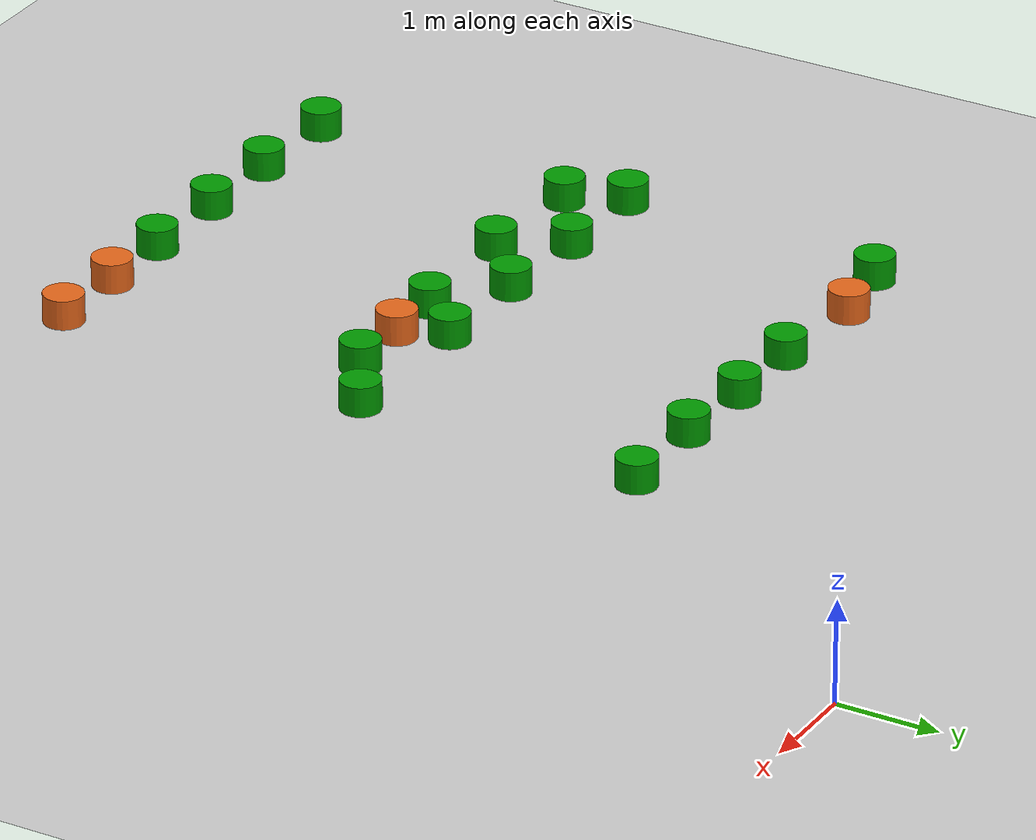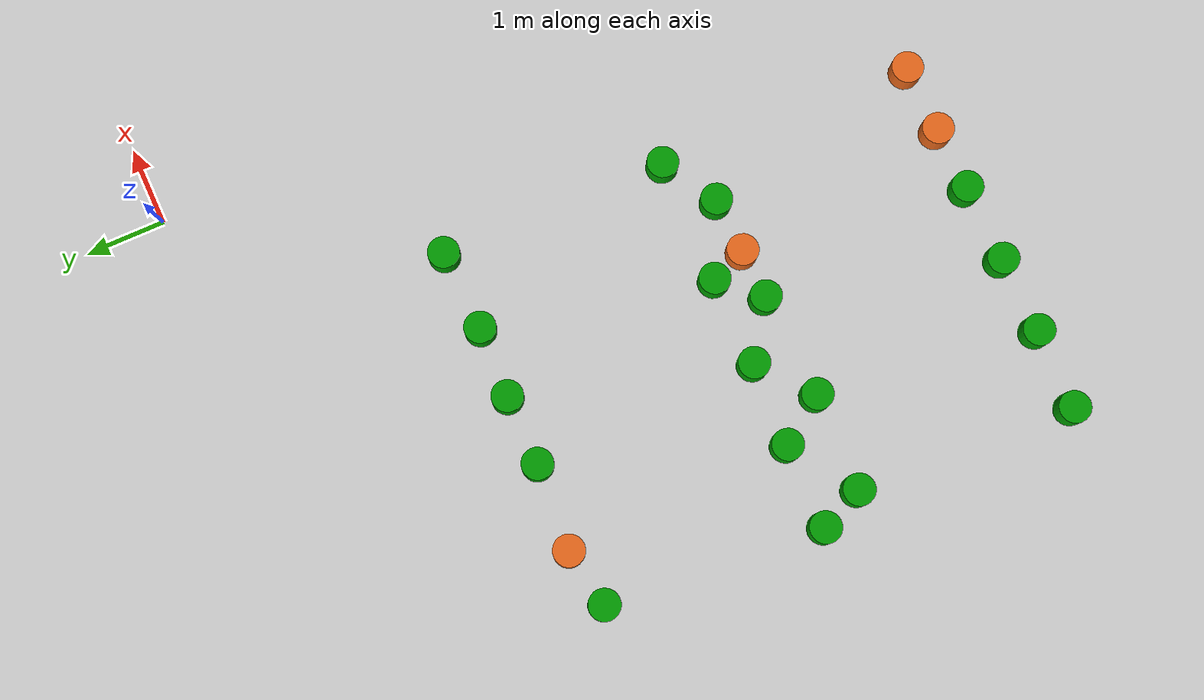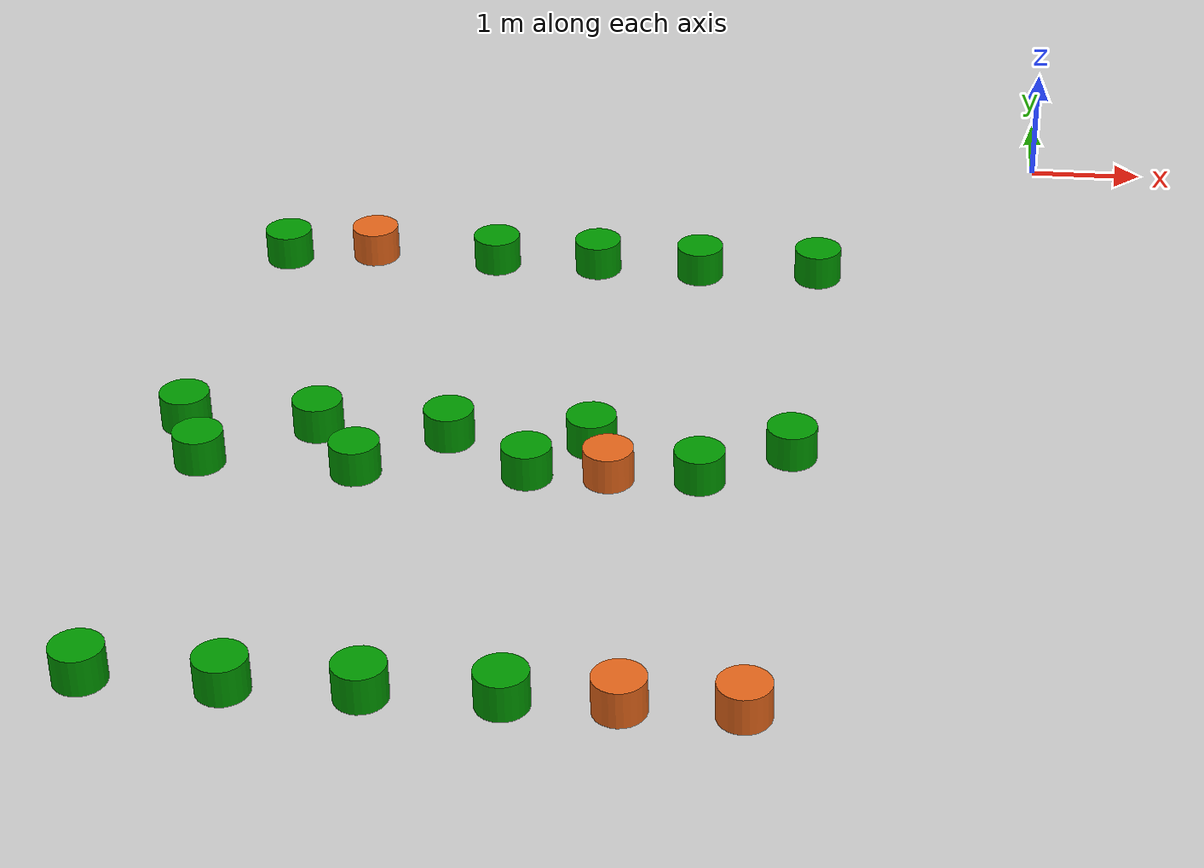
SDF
<sdf version="1.7">
 <world name="default">
  <model name="ground_plane">
   <static>1</static>
   <link name="link">
    <collision name="collision">
     <geometry><plane><normal>0 0 1</normal><size>100 100</size></plane></geometry>
     <surface>
      <contact><collide_bitmask>65535</collide_bitmask></contact>
      <friction><ode><mu>100</mu><mu2>50</mu2></ode></friction>
     </surface>
    </collision>
    <visual name="visual">
     <cast_shadows>0</cast_shadows>
     <geometry><plane><normal>0 0 1</normal><size>100 100</size></plane></geometry>
     <material>
      <script><uri>file://media/materials/scripts/gazebo.material</uri><name>Gazebo/Grey</name></script>
     </material>
    </visual>
   </link>
  </model>
  <model name="Test_pot_green">
   <link name="link_0">
    <inertial>
     <mass>0.044841</mass>
     <inertia>
      <ixx>0.00074807</ixx>
      <ixy>0</ixy>
      <ixz>0</ixz>
      <iyy>0.00074807</iyy>
      <iyz>0</iyz>
      <izz>0.00086495</izz>
     </inertia>
    </inertial>
    <pose>3e-06 1e-06 0 0 -0 0</pose>
    <visual name="visual">
     <geometry><cylinder><radius>0.196415</radius><length>0.290612</length></cylinder></geometry>
     <material>
      <lighting>1</lighting>
      <script><uri>file://media/materials/scripts/gazebo.material</uri><name>Gazebo/Grey</name></script>
      <shader type="pixel"><normal_map>__default__</normal_map></shader>
      <diffuse>0 0.6 0 0</diffuse>
      <ambient>0.3 0.3 0.3 1</ambient>
      <specular>0.01 0.01 0.01 1</specular>
      <emissive>0 0 0 1</emissive>
     </material>
    </visual>
    <collision name="collision">
     <geometry><cylinder><radius>0.196415</radius><length>0.290612</length></cylinder></geometry>
     <surface>
      <friction>
       <ode><mu>1</mu><mu2>1</mu2><fdir1>0 0 0</fdir1><slip1>0</slip1><slip2>0</slip2></ode>
       <torsional>
        <coefficient>1</coefficient>
        <patch_radius>0</patch_radius>
        <surface_radius>0</surface_radius>
        <use_patch_radius>1</use_patch_radius>
        <ode><slip>0</slip></ode>
       </torsional>
      </friction>
      <bounce><restitution_coefficient>0</restitution_coefficient><threshold>1e+06</threshold></bounce>
      <contact>
       <collide_without_contact>0</collide_without_contact>
       <collide_without_contact_bitmask>1</collide_without_contact_bitmask>
       <collide_bitmask>1</collide_bitmask>
       <ode>
        <soft_cfm>0</soft_cfm>
        <soft_erp>0.2</soft_erp>
        <kp>1e+13</kp>
        <kd>1</kd>
        <max_vel>0.01</max_vel>
        <min_depth>0</min_depth>
       </ode>
       <bullet>
        <split_impulse>1</split_impulse>
        <split_impulse_penetration_threshold>-0.01</split_impulse_penetration_threshold>
        <soft_cfm>0</soft_cfm>
        <soft_erp>0.2</soft_erp>
        <kp>1e+13</kp>
        <kd>1</kd>
       </bullet>
      </contact>
     </surface>
    </collision>
   </link>
   <static>0</static>
   <pose>-6.50437 -3.08139 0.575588 1e-06 6e-06 -0.000489</pose>
  </model>
  <model name="Test_pot_orange">
   <link name="link_0">
    <inertial>
     <mass>0.044841</mass>
     <inertia>
      <ixx>0.00074807</ixx>
      <ixy>0</ixy>
      <ixz>0</ixz>
      <iyy>0.00074807</iyy>
      <iyz>0</iyz>
      <izz>0.00086495</izz>
     </inertia>
    </inertial>
    <pose>3e-06 1e-06 -0 0 -0 0</pose>
    <visual name="visual">
     <geometry><cylinder><radius>0.196415</radius><length>0.290612</length></cylinder></geometry>
     <material>
      <lighting>1</lighting>
      <script><uri>file://media/materials/scripts/gazebo.material</uri><name>Gazebo/Grey</name></script>
      <shader type="pixel"><normal_map>__default__</normal_map></shader>
      <ambient>0.3 0.3 0.3 1</ambient>
      <diffuse>0.9 0.4 0.1 1</diffuse>
      <specular>0.01 0.01 0.01 1</specular>
      <emissive>0 0 0 1</emissive>
     </material>
    </visual>
    <collision name="collision">
     <geometry><cylinder><radius>0.196415</radius><length>0.290612</length></cylinder></geometry>
     <surface>
      <friction>
       <ode><mu>1</mu><mu2>1</mu2><fdir1>0 0 0</fdir1><slip1>0</slip1><slip2>0</slip2></ode>
       <torsional>
        <coefficient>1</coefficient>
        <patch_radius>0</patch_radius>
        <surface_radius>0</surface_radius>
        <use_patch_radius>1</use_patch_radius>
        <ode><slip>0</slip></ode>
       </torsional>
      </friction>
      <bounce><restitution_coefficient>0</restitution_coefficient><threshold>1e+06</threshold></bounce>
      <contact>
       <collide_without_contact>0</collide_without_contact>
       <collide_without_contact_bitmask>1</collide_without_contact_bitmask>
       <collide_bitmask>1</collide_bitmask>
       <ode>
        <soft_cfm>0</soft_cfm>
        <soft_erp>0.2</soft_erp>
        <kp>1e+13</kp>
        <kd>1</kd>
        <max_vel>0.01</max_vel>
        <min_depth>0</min_depth>
       </ode>
       <bullet>
        <split_impulse>1</split_impulse>
        <split_impulse_penetration_threshold>-0.01</split_impulse_penetration_threshold>
        <soft_cfm>0</soft_cfm>
        <soft_erp>0.2</soft_erp>
        <kp>1e+13</kp>
        <kd>1</kd>
       </bullet>
      </contact>
     </surface>
    </collision>
   </link>
   <static>0</static>
   <pose>-5.76716 -2.95767 0.575586 3.8e-05 1e-06 -0.000459</pose>
  </model>
  <model name="Test_pot_green_clone">
   <link name="link_0">
    <inertial>
     <mass>0.044841</mass>
     <inertia>
      <ixx>0.00074807</ixx>
      <ixy>0</ixy>
      <ixz>0</ixz>
      <iyy>0.00074807</iyy>
      <iyz>0</iyz>
      <izz>0.00086495</izz>
     </inertia>
    </inertial>
    <pose>3e-06 1e-06 0 0 -0 0</pose>
    <visual name="visual">
     <geometry><cylinder><radius>0.196415</radius><length>0.290612</length></cylinder></geometry>
     <material>
      <lighting>1</lighting>
      <script><uri>file://media/materials/scripts/gazebo.material</uri><name>Gazebo/Grey</name></script>
      <shader type="pixel"><normal_map>__default__</normal_map></shader>
      <diffuse>0 0.6 0 0</diffuse>
      <ambient>0.3 0.3 0.3 1</ambient>
      <specular>0.01 0.01 0.01 1</specular>
      <emissive>0 0 0 1</emissive>
     </material>
    </visual>
    <collision name="collision">
     <geometry><cylinder><radius>0.196415</radius><length>0.290612</length></cylinder></geometry>
     <surface>
      <friction>
       <ode><mu>1</mu><mu2>1</mu2><fdir1>0 0 0</fdir1><slip1>0</slip1><slip2>0</slip2></ode>
       <torsional>
        <coefficient>1</coefficient>
        <patch_radius>0</patch_radius>
        <surface_radius>0</surface_radius>
        <use_patch_radius>1</use_patch_radius>
        <ode><slip>0</slip></ode>
       </torsional>
      </friction>
      <bounce><restitution_coefficient>0</restitution_coefficient><threshold>1e+06</threshold></bounce>
      <contact>
       <collide_without_contact>0</collide_without_contact>
       <collide_without_contact_bitmask>1</collide_without_contact_bitmask>
       <collide_bitmask>1</collide_bitmask>
       <ode>
        <soft_cfm>0</soft_cfm>
        <soft_erp>0.2</soft_erp>
        <kp>1e+13</kp>
        <kd>1</kd>
        <max_vel>0.01</max_vel>
        <min_depth>0</min_depth>
       </ode>
       <bullet>
        <split_impulse>1</split_impulse>
        <split_impulse_penetration_threshold>-0.01</split_impulse_penetration_threshold>
        <soft_cfm>0</soft_cfm>
        <soft_erp>0.2</soft_erp>
        <kp>1e+13</kp>
        <kd>1</kd>
       </bullet>
      </contact>
     </surface>
    </collision>
   </link>
   <static>0</static>
   <pose>-4.69033 -3.02874 0.575588 1e-06 6e-06 -0.000489</pose>
  </model>
  <model name="Test_pot_green_clone_0">
   <link name="link_0">
    <inertial>
     <mass>0.044841</mass>
     <inertia>
      <ixx>0.00074807</ixx>
      <ixy>0</ixy>
      <ixz>0</ixz>
      <iyy>0.00074807</iyy>
      <iyz>0</iyz>
      <izz>0.00086495</izz>
     </inertia>
    </inertial>
    <pose>3e-06 1e-06 0 0 -0 0</pose>
    <visual name="visual">
     <geometry><cylinder><radius>0.196415</radius><length>0.290612</length></cylinder></geometry>
     <material>
      <lighting>1</lighting>
      <script><uri>file://media/materials/scripts/gazebo.material</uri><name>Gazebo/Grey</name></script>
      <shader type="pixel"><normal_map>__default__</normal_map></shader>
      <diffuse>0 0.6 0 0</diffuse>
      <ambient>0.3 0.3 0.3 1</ambient>
      <specular>0.01 0.01 0.01 1</specular>
      <emissive>0 0 0 1</emissive>
     </material>
    </visual>
    <collision name="collision">
     <geometry><cylinder><radius>0.196415</radius><length>0.290612</length></cylinder></geometry>
     <surface>
      <friction>
       <ode><mu>1</mu><mu2>1</mu2><fdir1>0 0 0</fdir1><slip1>0</slip1><slip2>0</slip2></ode>
       <torsional>
        <coefficient>1</coefficient>
        <patch_radius>0</patch_radius>
        <surface_radius>0</surface_radius>
        <use_patch_radius>1</use_patch_radius>
        <ode><slip>0</slip></ode>
       </torsional>
      </friction>
      <bounce><restitution_coefficient>0</restitution_coefficient><threshold>1e+06</threshold></bounce>
      <contact>
       <collide_without_contact>0</collide_without_contact>
       <collide_without_contact_bitmask>1</collide_without_contact_bitmask>
       <collide_bitmask>1</collide_bitmask>
       <ode>
        <soft_cfm>0</soft_cfm>
        <soft_erp>0.2</soft_erp>
        <kp>1e+13</kp>
        <kd>1</kd>
        <max_vel>0.01</max_vel>
        <min_depth>0</min_depth>
       </ode>
       <bullet>
        <split_impulse>1</split_impulse>
        <split_impulse_penetration_threshold>-0.01</split_impulse_penetration_threshold>
        <soft_cfm>0</soft_cfm>
        <soft_erp>0.2</soft_erp>
        <kp>1e+13</kp>
        <kd>1</kd>
       </bullet>
      </contact>
     </surface>
    </collision>
   </link>
   <static>0</static>
   <pose>-3.81267 -3.0248 0.575588 1e-06 6e-06 -0.000489</pose>
  </model>
  <model name="Test_pot_green_clone_1">
   <link name="link_0">
    <inertial>
     <mass>0.044841</mass>
     <inertia>
      <ixx>0.00074807</ixx>
      <ixy>0</ixy>
      <ixz>0</ixz>
      <iyy>0.00074807</iyy>
      <iyz>0</iyz>
      <izz>0.00086495</izz>
     </inertia>
    </inertial>
    <pose>3e-06 1e-06 0 0 -0 0</pose>
    <visual name="visual">
     <geometry><cylinder><radius>0.196415</radius><length>0.290612</length></cylinder></geometry>
     <material>
      <lighting>1</lighting>
      <script><uri>file://media/materials/scripts/gazebo.material</uri><name>Gazebo/Grey</name></script>
      <shader type="pixel"><normal_map>__default__</normal_map></shader>
      <diffuse>0 0.6 0 0</diffuse>
      <ambient>0.3 0.3 0.3 1</ambient>
      <specular>0.01 0.01 0.01 1</specular>
      <emissive>0 0 0 1</emissive>
     </material>
    </visual>
    <collision name="collision">
     <geometry><cylinder><radius>0.196415</radius><length>0.290612</length></cylinder></geometry>
     <surface>
      <friction>
       <ode><mu>1</mu><mu2>1</mu2><fdir1>0 0 0</fdir1><slip1>0</slip1><slip2>0</slip2></ode>
       <torsional>
        <coefficient>1</coefficient>
        <patch_radius>0</patch_radius>
        <surface_radius>0</surface_radius>
        <use_patch_radius>1</use_patch_radius>
        <ode><slip>0</slip></ode>
       </torsional>
      </friction>
      <bounce><restitution_coefficient>0</restitution_coefficient><threshold>1e+06</threshold></bounce>
      <contact>
       <collide_without_contact>0</collide_without_contact>
       <collide_without_contact_bitmask>1</collide_without_contact_bitmask>
       <collide_bitmask>1</collide_bitmask>
       <ode>
        <soft_cfm>0</soft_cfm>
        <soft_erp>0.2</soft_erp>
        <kp>1e+13</kp>
        <kd>1</kd>
        <max_vel>0.01</max_vel>
        <min_depth>0</min_depth>
       </ode>
       <bullet>
        <split_impulse>1</split_impulse>
        <split_impulse_penetration_threshold>-0.01</split_impulse_penetration_threshold>
        <soft_cfm>0</soft_cfm>
        <soft_erp>0.2</soft_erp>
        <kp>1e+13</kp>
        <kd>1</kd>
       </bullet>
      </contact>
     </surface>
    </collision>
   </link>
   <static>0</static>
   <pose>-2.92732 -3.05626 0.575588 1e-06 6e-06 -0.000489</pose>
  </model>
  <model name="Test_pot_green_clone_2">
   <link name="link_0">
    <inertial>
     <mass>0.044841</mass>
     <inertia>
      <ixx>0.00074807</ixx>
      <ixy>0</ixy>
      <ixz>0</ixz>
      <iyy>0.00074807</iyy>
      <iyz>0</iyz>
      <izz>0.00086495</izz>
     </inertia>
    </inertial>
    <pose>3e-06 1e-06 0 0 -0 0</pose>
    <visual name="visual">
     <geometry><cylinder><radius>0.196415</radius><length>0.290612</length></cylinder></geometry>
     <material>
      <lighting>1</lighting>
      <script><uri>file://media/materials/scripts/gazebo.material</uri><name>Gazebo/Grey</name></script>
      <shader type="pixel"><normal_map>__default__</normal_map></shader>
      <diffuse>0 0.6 0 0</diffuse>
      <ambient>0.3 0.3 0.3 1</ambient>
      <specular>0.01 0.01 0.01 1</specular>
      <emissive>0 0 0 1</emissive>
     </material>
    </visual>
    <collision name="collision">
     <geometry><cylinder><radius>0.196415</radius><length>0.290612</length></cylinder></geometry>
     <surface>
      <friction>
       <ode><mu>1</mu><mu2>1</mu2><fdir1>0 0 0</fdir1><slip1>0</slip1><slip2>0</slip2></ode>
       <torsional>
        <coefficient>1</coefficient>
        <patch_radius>0</patch_radius>
        <surface_radius>0</surface_radius>
        <use_patch_radius>1</use_patch_radius>
        <ode><slip>0</slip></ode>
       </torsional>
      </friction>
      <bounce><restitution_coefficient>0</restitution_coefficient><threshold>1e+06</threshold></bounce>
      <contact>
       <collide_without_contact>0</collide_without_contact>
       <collide_without_contact_bitmask>1</collide_without_contact_bitmask>
       <collide_bitmask>1</collide_bitmask>
       <ode>
        <soft_cfm>0</soft_cfm>
        <soft_erp>0.2</soft_erp>
        <kp>1e+13</kp>
        <kd>1</kd>
        <max_vel>0.01</max_vel>
        <min_depth>0</min_depth>
       </ode>
       <bullet>
        <split_impulse>1</split_impulse>
        <split_impulse_penetration_threshold>-0.01</split_impulse_penetration_threshold>
        <soft_cfm>0</soft_cfm>
        <soft_erp>0.2</soft_erp>
        <kp>1e+13</kp>
        <kd>1</kd>
       </bullet>
      </contact>
     </surface>
    </collision>
   </link>
   <static>0</static>
   <pose>-1.91725 -3.01875 0.575588 1e-06 6e-06 -0.000489</pose>
  </model>
  <model name="Test_pot_green_clone_4">
   <link name="link_0">
    <inertial>
     <mass>0.044841</mass>
     <inertia>
      <ixx>0.00074807</ixx>
      <ixy>0</ixy>
      <ixz>0</ixz>
      <iyy>0.00074807</iyy>
      <iyz>0</iyz>
      <izz>0.00086495</izz>
     </inertia>
    </inertial>
    <pose>3e-06 1e-06 0 0 -0 0</pose>
    <visual name="visual">
     <geometry><cylinder><radius>0.196415</radius><length>0.290612</length></cylinder></geometry>
     <material>
      <lighting>1</lighting>
      <script><uri>file://media/materials/scripts/gazebo.material</uri><name>Gazebo/Grey</name></script>
      <shader type="pixel"><normal_map>__default__</normal_map></shader>
      <diffuse>0 0.6 0 0</diffuse>
      <ambient>0.3 0.3 0.3 1</ambient>
      <specular>0.01 0.01 0.01 1</specular>
      <emissive>0 0 0 1</emissive>
     </material>
    </visual>
    <collision name="collision">
     <geometry><cylinder><radius>0.196415</radius><length>0.290612</length></cylinder></geometry>
     <surface>
      <friction>
       <ode><mu>1</mu><mu2>1</mu2><fdir1>0 0 0</fdir1><slip1>0</slip1><slip2>0</slip2></ode>
       <torsional>
        <coefficient>1</coefficient>
        <patch_radius>0</patch_radius>
        <surface_radius>0</surface_radius>
        <use_patch_radius>1</use_patch_radius>
        <ode><slip>0</slip></ode>
       </torsional>
      </friction>
      <bounce><restitution_coefficient>0</restitution_coefficient><threshold>1e+06</threshold></bounce>
      <contact>
       <collide_without_contact>0</collide_without_contact>
       <collide_without_contact_bitmask>1</collide_without_contact_bitmask>
       <collide_bitmask>1</collide_bitmask>
       <ode>
        <soft_cfm>0</soft_cfm>
        <soft_erp>0.2</soft_erp>
        <kp>1e+13</kp>
        <kd>1</kd>
        <max_vel>0.01</max_vel>
        <min_depth>0</min_depth>
       </ode>
       <bullet>
        <split_impulse>1</split_impulse>
        <split_impulse_penetration_threshold>-0.01</split_impulse_penetration_threshold>
        <soft_cfm>0</soft_cfm>
        <soft_erp>0.2</soft_erp>
        <kp>1e+13</kp>
        <kd>1</kd>
       </bullet>
      </contact>
     </surface>
    </collision>
   </link>
   <static>0</static>
   <pose>-6.73376 -5.80677 0.575588 1e-06 6e-06 -0.000489</pose>
  </model>
  <model name="Test_pot_green_clone_5">
   <link name="link_0">
    <inertial>
     <mass>0.044841</mass>
     <inertia>
      <ixx>0.00074807</ixx>
      <ixy>0</ixy>
      <ixz>0</ixz>
      <iyy>0.00074807</iyy>
      <iyz>0</iyz>
      <izz>0.00086495</izz>
     </inertia>
    </inertial>
    <pose>3e-06 1e-06 0 0 -0 0</pose>
    <visual name="visual">
     <geometry><cylinder><radius>0.196415</radius><length>0.290612</length></cylinder></geometry>
     <material>
      <lighting>1</lighting>
      <script><uri>file://media/materials/scripts/gazebo.material</uri><name>Gazebo/Grey</name></script>
      <shader type="pixel"><normal_map>__default__</normal_map></shader>
      <diffuse>0 0.6 0 0</diffuse>
      <ambient>0.3 0.3 0.3 1</ambient>
      <specular>0.01 0.01 0.01 1</specular>
      <emissive>0 0 0 1</emissive>
     </material>
    </visual>
    <collision name="collision">
     <geometry><cylinder><radius>0.196415</radius><length>0.290612</length></cylinder></geometry>
     <surface>
      <friction>
       <ode><mu>1</mu><mu2>1</mu2><fdir1>0 0 0</fdir1><slip1>0</slip1><slip2>0</slip2></ode>
       <torsional>
        <coefficient>1</coefficient>
        <patch_radius>0</patch_radius>
        <surface_radius>0</surface_radius>
        <use_patch_radius>1</use_patch_radius>
        <ode><slip>0</slip></ode>
       </torsional>
      </friction>
      <bounce><restitution_coefficient>0</restitution_coefficient><threshold>1e+06</threshold></bounce>
      <contact>
       <collide_without_contact>0</collide_without_contact>
       <collide_without_contact_bitmask>1</collide_without_contact_bitmask>
       <collide_bitmask>1</collide_bitmask>
       <ode>
        <soft_cfm>0</soft_cfm>
        <soft_erp>0.2</soft_erp>
        <kp>1e+13</kp>
        <kd>1</kd>
        <max_vel>0.01</max_vel>
        <min_depth>0</min_depth>
       </ode>
       <bullet>
        <split_impulse>1</split_impulse>
        <split_impulse_penetration_threshold>-0.01</split_impulse_penetration_threshold>
        <soft_cfm>0</soft_cfm>
        <soft_erp>0.2</soft_erp>
        <kp>1e+13</kp>
        <kd>1</kd>
       </bullet>
      </contact>
     </surface>
    </collision>
   </link>
   <static>0</static>
   <pose>-5.67776 -5.81278 0.575588 1e-06 6e-06 -0.000489</pose>
  </model>
  <model name="Test_pot_green_clone_6">
   <link name="link_0">
    <inertial>
     <mass>0.044841</mass>
     <inertia>
      <ixx>0.00074807</ixx>
      <ixy>0</ixy>
      <ixz>0</ixz>
      <iyy>0.00074807</iyy>
      <iyz>0</iyz>
      <izz>0.00086495</izz>
     </inertia>
    </inertial>
    <pose>3e-06 1e-06 0 0 -0 0</pose>
    <visual name="visual">
     <geometry><cylinder><radius>0.196415</radius><length>0.290612</length></cylinder></geometry>
     <material>
      <lighting>1</lighting>
      <script><uri>file://media/materials/scripts/gazebo.material</uri><name>Gazebo/Grey</name></script>
      <shader type="pixel"><normal_map>__default__</normal_map></shader>
      <diffuse>0 0.6 0 0</diffuse>
      <ambient>0.3 0.3 0.3 1</ambient>
      <specular>0.01 0.01 0.01 1</specular>
      <emissive>0 0 0 1</emissive>
     </material>
    </visual>
    <collision name="collision">
     <geometry><cylinder><radius>0.196415</radius><length>0.290612</length></cylinder></geometry>
     <surface>
      <friction>
       <ode><mu>1</mu><mu2>1</mu2><fdir1>0 0 0</fdir1><slip1>0</slip1><slip2>0</slip2></ode>
       <torsional>
        <coefficient>1</coefficient>
        <patch_radius>0</patch_radius>
        <surface_radius>0</surface_radius>
        <use_patch_radius>1</use_patch_radius>
        <ode><slip>0</slip></ode>
       </torsional>
      </friction>
      <bounce><restitution_coefficient>0</restitution_coefficient><threshold>1e+06</threshold></bounce>
      <contact>
       <collide_without_contact>0</collide_without_contact>
       <collide_without_contact_bitmask>1</collide_without_contact_bitmask>
       <collide_bitmask>1</collide_bitmask>
       <ode>
        <soft_cfm>0</soft_cfm>
        <soft_erp>0.2</soft_erp>
        <kp>1e+13</kp>
        <kd>1</kd>
        <max_vel>0.01</max_vel>
        <min_depth>0</min_depth>
       </ode>
       <bullet>
        <split_impulse>1</split_impulse>
        <split_impulse_penetration_threshold>-0.01</split_impulse_penetration_threshold>
        <soft_cfm>0</soft_cfm>
        <soft_erp>0.2</soft_erp>
        <kp>1e+13</kp>
        <kd>1</kd>
       </bullet>
      </contact>
     </surface>
    </collision>
   </link>
   <static>0</static>
   <pose>-4.63391 -5.86067 0.575588 1e-06 6e-06 -0.000489</pose>
  </model>
  <model name="Test_pot_green_clone_7">
   <link name="link_0">
    <inertial>
     <mass>0.044841</mass>
     <inertia>
      <ixx>0.00074807</ixx>
      <ixy>0</ixy>
      <ixz>0</ixz>
      <iyy>0.00074807</iyy>
      <iyz>0</iyz>
      <izz>0.00086495</izz>
     </inertia>
    </inertial>
    <pose>3e-06 1e-06 0 0 -0 0</pose>
    <visual name="visual">
     <geometry><cylinder><radius>0.196415</radius><length>0.290612</length></cylinder></geometry>
     <material>
      <lighting>1</lighting>
      <script><uri>file://media/materials/scripts/gazebo.material</uri><name>Gazebo/Grey</name></script>
      <shader type="pixel"><normal_map>__default__</normal_map></shader>
      <diffuse>0 0.6 0 0</diffuse>
      <ambient>0.3 0.3 0.3 1</ambient>
      <specular>0.01 0.01 0.01 1</specular>
      <emissive>0 0 0 1</emissive>
     </material>
    </visual>
    <collision name="collision">
     <geometry><cylinder><radius>0.196415</radius><length>0.290612</length></cylinder></geometry>
     <surface>
      <friction>
       <ode><mu>1</mu><mu2>1</mu2><fdir1>0 0 0</fdir1><slip1>0</slip1><slip2>0</slip2></ode>
       <torsional>
        <coefficient>1</coefficient>
        <patch_radius>0</patch_radius>
        <surface_radius>0</surface_radius>
        <use_patch_radius>1</use_patch_radius>
        <ode><slip>0</slip></ode>
       </torsional>
      </friction>
      <bounce><restitution_coefficient>0</restitution_coefficient><threshold>1e+06</threshold></bounce>
      <contact>
       <collide_without_contact>0</collide_without_contact>
       <collide_without_contact_bitmask>1</collide_without_contact_bitmask>
       <collide_bitmask>1</collide_bitmask>
       <ode>
        <soft_cfm>0</soft_cfm>
        <soft_erp>0.2</soft_erp>
        <kp>1e+13</kp>
        <kd>1</kd>
        <max_vel>0.01</max_vel>
        <min_depth>0</min_depth>
       </ode>
       <bullet>
        <split_impulse>1</split_impulse>
        <split_impulse_penetration_threshold>-0.01</split_impulse_penetration_threshold>
        <soft_cfm>0</soft_cfm>
        <soft_erp>0.2</soft_erp>
        <kp>1e+13</kp>
        <kd>1</kd>
       </bullet>
      </contact>
     </surface>
    </collision>
   </link>
   <static>0</static>
   <pose>-6.49418 -6.35374 0.575588 1e-06 6e-06 -0.000489</pose>
  </model>
  <model name="Test_pot_green_clone_8">
   <link name="link_0">
    <inertial>
     <mass>0.044841</mass>
     <inertia>
      <ixx>0.00074807</ixx>
      <ixy>0</ixy>
      <ixz>0</ixz>
      <iyy>0.00074807</iyy>
      <iyz>0</iyz>
      <izz>0.00086495</izz>
     </inertia>
    </inertial>
    <pose>3e-06 1e-06 0 0 -0 0</pose>
    <visual name="visual">
     <geometry><cylinder><radius>0.196415</radius><length>0.290612</length></cylinder></geometry>
     <material>
      <lighting>1</lighting>
      <script><uri>file://media/materials/scripts/gazebo.material</uri><name>Gazebo/Grey</name></script>
      <shader type="pixel"><normal_map>__default__</normal_map></shader>
      <diffuse>0 0.6 0 0</diffuse>
      <ambient>0.3 0.3 0.3 1</ambient>
      <specular>0.01 0.01 0.01 1</specular>
      <emissive>0 0 0 1</emissive>
     </material>
    </visual>
    <collision name="collision">
     <geometry><cylinder><radius>0.196415</radius><length>0.290612</length></cylinder></geometry>
     <surface>
      <friction>
       <ode><mu>1</mu><mu2>1</mu2><fdir1>0 0 0</fdir1><slip1>0</slip1><slip2>0</slip2></ode>
       <torsional>
        <coefficient>1</coefficient>
        <patch_radius>0</patch_radius>
        <surface_radius>0</surface_radius>
        <use_patch_radius>1</use_patch_radius>
        <ode><slip>0</slip></ode>
       </torsional>
      </friction>
      <bounce><restitution_coefficient>0</restitution_coefficient><threshold>1e+06</threshold></bounce>
      <contact>
       <collide_without_contact>0</collide_without_contact>
       <collide_without_contact_bitmask>1</collide_without_contact_bitmask>
       <collide_bitmask>1</collide_bitmask>
       <ode>
        <soft_cfm>0</soft_cfm>
        <soft_erp>0.2</soft_erp>
        <kp>1e+13</kp>
        <kd>1</kd>
        <max_vel>0.01</max_vel>
        <min_depth>0</min_depth>
       </ode>
       <bullet>
        <split_impulse>1</split_impulse>
        <split_impulse_penetration_threshold>-0.01</split_impulse_penetration_threshold>
        <soft_cfm>0</soft_cfm>
        <soft_erp>0.2</soft_erp>
        <kp>1e+13</kp>
        <kd>1</kd>
       </bullet>
      </contact>
     </surface>
    </collision>
   </link>
   <static>0</static>
   <pose>-5.2738 -6.38669 0.575588 1e-06 6e-06 -0.000489</pose>
  </model>
  <model name="Test_pot_green_clone_9">
   <link name="link_0">
    <inertial>
     <mass>0.044841</mass>
     <inertia>
      <ixx>0.00074807</ixx>
      <ixy>0</ixy>
      <ixz>0</ixz>
      <iyy>0.00074807</iyy>
      <iyz>0</iyz>
      <izz>0.00086495</izz>
     </inertia>
    </inertial>
    <pose>3e-06 1e-06 0 0 -0 0</pose>
    <visual name="visual">
     <geometry><cylinder><radius>0.196415</radius><length>0.290612</length></cylinder></geometry>
     <material>
      <lighting>1</lighting>
      <script><uri>file://media/materials/scripts/gazebo.material</uri><name>Gazebo/Grey</name></script>
      <shader type="pixel"><normal_map>__default__</normal_map></shader>
      <diffuse>0 0.6 0 0</diffuse>
      <ambient>0.3 0.3 0.3 1</ambient>
      <specular>0.01 0.01 0.01 1</specular>
      <emissive>0 0 0 1</emissive>
     </material>
    </visual>
    <collision name="collision">
     <geometry><cylinder><radius>0.196415</radius><length>0.290612</length></cylinder></geometry>
     <surface>
      <friction>
       <ode><mu>1</mu><mu2>1</mu2><fdir1>0 0 0</fdir1><slip1>0</slip1><slip2>0</slip2></ode>
       <torsional>
        <coefficient>1</coefficient>
        <patch_radius>0</patch_radius>
        <surface_radius>0</surface_radius>
        <use_patch_radius>1</use_patch_radius>
        <ode><slip>0</slip></ode>
       </torsional>
      </friction>
      <bounce><restitution_coefficient>0</restitution_coefficient><threshold>1e+06</threshold></bounce>
      <contact>
       <collide_without_contact>0</collide_without_contact>
       <collide_without_contact_bitmask>1</collide_without_contact_bitmask>
       <collide_bitmask>1</collide_bitmask>
       <ode>
        <soft_cfm>0</soft_cfm>
        <soft_erp>0.2</soft_erp>
        <kp>1e+13</kp>
        <kd>1</kd>
        <max_vel>0.01</max_vel>
        <min_depth>0</min_depth>
       </ode>
       <bullet>
        <split_impulse>1</split_impulse>
        <split_impulse_penetration_threshold>-0.01</split_impulse_penetration_threshold>
        <soft_cfm>0</soft_cfm>
        <soft_erp>0.2</soft_erp>
        <kp>1e+13</kp>
        <kd>1</kd>
       </bullet>
      </contact>
     </surface>
    </collision>
   </link>
   <static>0</static>
   <pose>-3.95991 -6.3273 0.575588 1e-06 6e-06 -0.000489</pose>
  </model>
  <model name="Test_pot_green_clone_10">
   <link name="link_0">
    <inertial>
     <mass>0.044841</mass>
     <inertia>
      <ixx>0.00074807</ixx>
      <ixy>0</ixy>
      <ixz>0</ixz>
      <iyy>0.00074807</iyy>
      <iyz>0</iyz>
      <izz>0.00086495</izz>
     </inertia>
    </inertial>
    <pose>3e-06 1e-06 0 0 -0 0</pose>
    <visual name="visual">
     <geometry><cylinder><radius>0.196415</radius><length>0.290612</length></cylinder></geometry>
     <material>
      <lighting>1</lighting>
      <script><uri>file://media/materials/scripts/gazebo.material</uri><name>Gazebo/Grey</name></script>
      <shader type="pixel"><normal_map>__default__</normal_map></shader>
      <diffuse>0 0.6 0 0</diffuse>
      <ambient>0.3 0.3 0.3 1</ambient>
      <specular>0.01 0.01 0.01 1</specular>
      <emissive>0 0 0 1</emissive>
     </material>
    </visual>
    <collision name="collision">
     <geometry><cylinder><radius>0.196415</radius><length>0.290612</length></cylinder></geometry>
     <surface>
      <friction>
       <ode><mu>1</mu><mu2>1</mu2><fdir1>0 0 0</fdir1><slip1>0</slip1><slip2>0</slip2></ode>
       <torsional>
        <coefficient>1</coefficient>
        <patch_radius>0</patch_radius>
        <surface_radius>0</surface_radius>
        <use_patch_radius>1</use_patch_radius>
        <ode><slip>0</slip></ode>
       </torsional>
      </friction>
      <bounce><restitution_coefficient>0</restitution_coefficient><threshold>1e+06</threshold></bounce>
      <contact>
       <collide_without_contact>0</collide_without_contact>
       <collide_without_contact_bitmask>1</collide_without_contact_bitmask>
       <collide_bitmask>1</collide_bitmask>
       <ode>
        <soft_cfm>0</soft_cfm>
        <soft_erp>0.2</soft_erp>
        <kp>1e+13</kp>
        <kd>1</kd>
        <max_vel>0.01</max_vel>
        <min_depth>0</min_depth>
       </ode>
       <bullet>
        <split_impulse>1</split_impulse>
        <split_impulse_penetration_threshold>-0.01</split_impulse_penetration_threshold>
        <soft_cfm>0</soft_cfm>
        <soft_erp>0.2</soft_erp>
        <kp>1e+13</kp>
        <kd>1</kd>
       </bullet>
      </contact>
     </surface>
    </collision>
   </link>
   <static>0</static>
   <pose>-3.5193 -5.85781 0.575588 1e-06 6e-06 -0.000489</pose>
  </model>
  <model name="Test_pot_green_clone_11">
   <link name="link_0">
    <inertial>
     <mass>0.044841</mass>
     <inertia>
      <ixx>0.00074807</ixx>
      <ixy>0</ixy>
      <ixz>0</ixz>
      <iyy>0.00074807</iyy>
      <iyz>0</iyz>
      <izz>0.00086495</izz>
     </inertia>
    </inertial>
    <pose>3e-06 1e-06 0 0 -0 0</pose>
    <visual name="visual">
     <geometry><cylinder><radius>0.196415</radius><length>0.290612</length></cylinder></geometry>
     <material>
      <lighting>1</lighting>
      <script><uri>file://media/materials/scripts/gazebo.material</uri><name>Gazebo/Grey</name></script>
      <shader type="pixel"><normal_map>__default__</normal_map></shader>
      <diffuse>0 0.6 0 0</diffuse>
      <ambient>0.3 0.3 0.3 1</ambient>
      <specular>0.01 0.01 0.01 1</specular>
      <emissive>0 0 0 1</emissive>
     </material>
    </visual>
    <collision name="collision">
     <geometry><cylinder><radius>0.196415</radius><length>0.290612</length></cylinder></geometry>
     <surface>
      <friction>
       <ode><mu>1</mu><mu2>1</mu2><fdir1>0 0 0</fdir1><slip1>0</slip1><slip2>0</slip2></ode>
       <torsional>
        <coefficient>1</coefficient>
        <patch_radius>0</patch_radius>
        <surface_radius>0</surface_radius>
        <use_patch_radius>1</use_patch_radius>
        <ode><slip>0</slip></ode>
       </torsional>
      </friction>
      <bounce><restitution_coefficient>0</restitution_coefficient><threshold>1e+06</threshold></bounce>
      <contact>
       <collide_without_contact>0</collide_without_contact>
       <collide_without_contact_bitmask>1</collide_without_contact_bitmask>
       <collide_bitmask>1</collide_bitmask>
       <ode>
        <soft_cfm>0</soft_cfm>
        <soft_erp>0.2</soft_erp>
        <kp>1e+13</kp>
        <kd>1</kd>
        <max_vel>0.01</max_vel>
        <min_depth>0</min_depth>
       </ode>
       <bullet>
        <split_impulse>1</split_impulse>
        <split_impulse_penetration_threshold>-0.01</split_impulse_penetration_threshold>
        <soft_cfm>0</soft_cfm>
        <soft_erp>0.2</soft_erp>
        <kp>1e+13</kp>
        <kd>1</kd>
       </bullet>
      </contact>
     </surface>
    </collision>
   </link>
   <static>0</static>
   <pose>-2.64373 -6.28124 0.575588 1e-06 6e-06 -0.000489</pose>
  </model>
  <model name="Test_pot_green_clone_13">
   <link name="link_0">
    <inertial>
     <mass>0.044841</mass>
     <inertia>
      <ixx>0.00074807</ixx>
      <ixy>0</ixy>
      <ixz>0</ixz>
      <iyy>0.00074807</iyy>
      <iyz>0</iyz>
      <izz>0.00086495</izz>
     </inertia>
    </inertial>
    <pose>3e-06 1e-06 0 0 -0 0</pose>
    <visual name="visual">
     <geometry><cylinder><radius>0.196415</radius><length>0.290612</length></cylinder></geometry>
     <material>
      <lighting>1</lighting>
      <script><uri>file://media/materials/scripts/gazebo.material</uri><name>Gazebo/Grey</name></script>
      <shader type="pixel"><normal_map>__default__</normal_map></shader>
      <diffuse>0 0.6 0 0</diffuse>
      <ambient>0.3 0.3 0.3 1</ambient>
      <specular>0.01 0.01 0.01 1</specular>
      <emissive>0 0 0 1</emissive>
     </material>
    </visual>
    <collision name="collision">
     <geometry><cylinder><radius>0.196415</radius><length>0.290612</length></cylinder></geometry>
     <surface>
      <friction>
       <ode><mu>1</mu><mu2>1</mu2><fdir1>0 0 0</fdir1><slip1>0</slip1><slip2>0</slip2></ode>
       <torsional>
        <coefficient>1</coefficient>
        <patch_radius>0</patch_radius>
        <surface_radius>0</surface_radius>
        <use_patch_radius>1</use_patch_radius>
        <ode><slip>0</slip></ode>
       </torsional>
      </friction>
      <bounce><restitution_coefficient>0</restitution_coefficient><threshold>1e+06</threshold></bounce>
      <contact>
       <collide_without_contact>0</collide_without_contact>
       <collide_without_contact_bitmask>1</collide_without_contact_bitmask>
       <collide_bitmask>1</collide_bitmask>
       <ode>
        <soft_cfm>0</soft_cfm>
        <soft_erp>0.2</soft_erp>
        <kp>1e+13</kp>
        <kd>1</kd>
        <max_vel>0.01</max_vel>
        <min_depth>0</min_depth>
       </ode>
       <bullet>
        <split_impulse>1</split_impulse>
        <split_impulse_penetration_threshold>-0.01</split_impulse_penetration_threshold>
        <soft_cfm>0</soft_cfm>
        <soft_erp>0.2</soft_erp>
        <kp>1e+13</kp>
        <kd>1</kd>
       </bullet>
      </contact>
     </surface>
    </collision>
   </link>
   <static>0</static>
   <pose>-1.96632 -5.87735 0.575588 1e-06 6e-06 -0.000489</pose>
  </model>
  <model name="Test_pot_green_clone_20">
   <link name="link_0">
    <inertial>
     <mass>0.044841</mass>
     <inertia>
      <ixx>0.00074807</ixx>
      <ixy>0</ixy>
      <ixz>0</ixz>
      <iyy>0.00074807</iyy>
      <iyz>0</iyz>
      <izz>0.00086495</izz>
     </inertia>
    </inertial>
    <pose>3e-06 1e-06 0 0 -0 0</pose>
    <visual name="visual">
     <geometry><cylinder><radius>0.196415</radius><length>0.290612</length></cylinder></geometry>
     <material>
      <lighting>1</lighting>
      <script><uri>file://media/materials/scripts/gazebo.material</uri><name>Gazebo/Grey</name></script>
      <shader type="pixel"><normal_map>__default__</normal_map></shader>
      <diffuse>0 0.6 0 0</diffuse>
      <ambient>0.3 0.3 0.3 1</ambient>
      <specular>0.01 0.01 0.01 1</specular>
      <emissive>0 0 0 1</emissive>
     </material>
    </visual>
    <collision name="collision">
     <geometry><cylinder><radius>0.196415</radius><length>0.290612</length></cylinder></geometry>
     <surface>
      <friction>
       <ode><mu>1</mu><mu2>1</mu2><fdir1>0 0 0</fdir1><slip1>0</slip1><slip2>0</slip2></ode>
       <torsional>
        <coefficient>1</coefficient>
        <patch_radius>0</patch_radius>
        <surface_radius>0</surface_radius>
        <use_patch_radius>1</use_patch_radius>
        <ode><slip>0</slip></ode>
       </torsional>
      </friction>
      <bounce><restitution_coefficient>0</restitution_coefficient><threshold>1e+06</threshold></bounce>
      <contact>
       <collide_without_contact>0</collide_without_contact>
       <collide_without_contact_bitmask>1</collide_without_contact_bitmask>
       <collide_bitmask>1</collide_bitmask>
       <ode>
        <soft_cfm>0</soft_cfm>
        <soft_erp>0.2</soft_erp>
        <kp>1e+13</kp>
        <kd>1</kd>
        <max_vel>0.01</max_vel>
        <min_depth>0</min_depth>
       </ode>
       <bullet>
        <split_impulse>1</split_impulse>
        <split_impulse_penetration_threshold>-0.01</split_impulse_penetration_threshold>
        <soft_cfm>0</soft_cfm>
        <soft_erp>0.2</soft_erp>
        <kp>1e+13</kp>
        <kd>1</kd>
       </bullet>
      </contact>
     </surface>
    </collision>
   </link>
   <static>0</static>
   <pose>-6.64592 -9.09811 0.575588 1e-06 6e-06 -0.000489</pose>
  </model>
  <model name="Test_pot_green_clone_21">
   <link name="link_0">
    <inertial>
     <mass>0.044841</mass>
     <inertia>
      <ixx>0.00074807</ixx>
      <ixy>0</ixy>
      <ixz>0</ixz>
      <iyy>0.00074807</iyy>
      <iyz>0</iyz>
      <izz>0.00086495</izz>
     </inertia>
    </inertial>
    <pose>3e-06 1e-06 0 0 -0 0</pose>
    <visual name="visual">
     <geometry><cylinder><radius>0.196415</radius><length>0.290612</length></cylinder></geometry>
     <material>
      <lighting>1</lighting>
      <script><uri>file://media/materials/scripts/gazebo.material</uri><name>Gazebo/Grey</name></script>
      <shader type="pixel"><normal_map>__default__</normal_map></shader>
      <diffuse>0 0.6 0 0</diffuse>
      <ambient>0.3 0.3 0.3 1</ambient>
      <specular>0.01 0.01 0.01 1</specular>
      <emissive>0 0 0 1</emissive>
     </material>
    </visual>
    <collision name="collision">
     <geometry><cylinder><radius>0.196415</radius><length>0.290612</length></cylinder></geometry>
     <surface>
      <friction>
       <ode><mu>1</mu><mu2>1</mu2><fdir1>0 0 0</fdir1><slip1>0</slip1><slip2>0</slip2></ode>
       <torsional>
        <coefficient>1</coefficient>
        <patch_radius>0</patch_radius>
        <surface_radius>0</surface_radius>
        <use_patch_radius>1</use_patch_radius>
        <ode><slip>0</slip></ode>
       </torsional>
      </friction>
      <bounce><restitution_coefficient>0</restitution_coefficient><threshold>1e+06</threshold></bounce>
      <contact>
       <collide_without_contact>0</collide_without_contact>
       <collide_without_contact_bitmask>1</collide_without_contact_bitmask>
       <collide_bitmask>1</collide_bitmask>
       <ode>
        <soft_cfm>0</soft_cfm>
        <soft_erp>0.2</soft_erp>
        <kp>1e+13</kp>
        <kd>1</kd>
        <max_vel>0.01</max_vel>
        <min_depth>0</min_depth>
       </ode>
       <bullet>
        <split_impulse>1</split_impulse>
        <split_impulse_penetration_threshold>-0.01</split_impulse_penetration_threshold>
        <soft_cfm>0</soft_cfm>
        <soft_erp>0.2</soft_erp>
        <kp>1e+13</kp>
        <kd>1</kd>
       </bullet>
      </contact>
     </surface>
    </collision>
   </link>
   <static>0</static>
   <pose>-5.64639 -9.12428 0.575588 1e-06 6e-06 -0.000489</pose>
  </model>
  <model name="Test_pot_green_clone_22">
   <link name="link_0">
    <inertial>
     <mass>0.044841</mass>
     <inertia>
      <ixx>0.00074807</ixx>
      <ixy>0</ixy>
      <ixz>0</ixz>
      <iyy>0.00074807</iyy>
      <iyz>0</iyz>
      <izz>0.00086495</izz>
     </inertia>
    </inertial>
    <pose>3e-06 1e-06 0 0 -0 0</pose>
    <visual name="visual">
     <geometry><cylinder><radius>0.196415</radius><length>0.290612</length></cylinder></geometry>
     <material>
      <lighting>1</lighting>
      <script><uri>file://media/materials/scripts/gazebo.material</uri><name>Gazebo/Grey</name></script>
      <shader type="pixel"><normal_map>__default__</normal_map></shader>
      <diffuse>0 0.6 0 0</diffuse>
      <ambient>0.3 0.3 0.3 1</ambient>
      <specular>0.01 0.01 0.01 1</specular>
      <emissive>0 0 0 1</emissive>
     </material>
    </visual>
    <collision name="collision">
     <geometry><cylinder><radius>0.196415</radius><length>0.290612</length></cylinder></geometry>
     <surface>
      <friction>
       <ode><mu>1</mu><mu2>1</mu2><fdir1>0 0 0</fdir1><slip1>0</slip1><slip2>0</slip2></ode>
       <torsional>
        <coefficient>1</coefficient>
        <patch_radius>0</patch_radius>
        <surface_radius>0</surface_radius>
        <use_patch_radius>1</use_patch_radius>
        <ode><slip>0</slip></ode>
       </torsional>
      </friction>
      <bounce><restitution_coefficient>0</restitution_coefficient><threshold>1e+06</threshold></bounce>
      <contact>
       <collide_without_contact>0</collide_without_contact>
       <collide_without_contact_bitmask>1</collide_without_contact_bitmask>
       <collide_bitmask>1</collide_bitmask>
       <ode>
        <soft_cfm>0</soft_cfm>
        <soft_erp>0.2</soft_erp>
        <kp>1e+13</kp>
        <kd>1</kd>
        <max_vel>0.01</max_vel>
        <min_depth>0</min_depth>
       </ode>
       <bullet>
        <split_impulse>1</split_impulse>
        <split_impulse_penetration_threshold>-0.01</split_impulse_penetration_threshold>
        <soft_cfm>0</soft_cfm>
        <soft_erp>0.2</soft_erp>
        <kp>1e+13</kp>
        <kd>1</kd>
       </bullet>
      </contact>
     </surface>
    </collision>
   </link>
   <static>0</static>
   <pose>-4.69553 -9.11877 0.575588 1e-06 6e-06 -0.000489</pose>
  </model>
  <model name="Test_pot_green_clone_23">
   <link name="link_0">
    <inertial>
     <mass>0.044841</mass>
     <inertia>
      <ixx>0.00074807</ixx>
      <ixy>0</ixy>
      <ixz>0</ixz>
      <iyy>0.00074807</iyy>
      <iyz>0</iyz>
      <izz>0.00086495</izz>
     </inertia>
    </inertial>
    <pose>3e-06 1e-06 0 0 -0 0</pose>
    <visual name="visual">
     <geometry><cylinder><radius>0.196415</radius><length>0.290612</length></cylinder></geometry>
     <material>
      <lighting>1</lighting>
      <script><uri>file://media/materials/scripts/gazebo.material</uri><name>Gazebo/Grey</name></script>
      <shader type="pixel"><normal_map>__default__</normal_map></shader>
      <diffuse>0 0.6 0 0</diffuse>
      <ambient>0.3 0.3 0.3 1</ambient>
      <specular>0.01 0.01 0.01 1</specular>
      <emissive>0 0 0 1</emissive>
     </material>
    </visual>
    <collision name="collision">
     <geometry><cylinder><radius>0.196415</radius><length>0.290612</length></cylinder></geometry>
     <surface>
      <friction>
       <ode><mu>1</mu><mu2>1</mu2><fdir1>0 0 0</fdir1><slip1>0</slip1><slip2>0</slip2></ode>
       <torsional>
        <coefficient>1</coefficient>
        <patch_radius>0</patch_radius>
        <surface_radius>0</surface_radius>
        <use_patch_radius>1</use_patch_radius>
        <ode><slip>0</slip></ode>
       </torsional>
      </friction>
      <bounce><restitution_coefficient>0</restitution_coefficient><threshold>1e+06</threshold></bounce>
      <contact>
       <collide_without_contact>0</collide_without_contact>
       <collide_without_contact_bitmask>1</collide_without_contact_bitmask>
       <collide_bitmask>1</collide_bitmask>
       <ode>
        <soft_cfm>0</soft_cfm>
        <soft_erp>0.2</soft_erp>
        <kp>1e+13</kp>
        <kd>1</kd>
        <max_vel>0.01</max_vel>
        <min_depth>0</min_depth>
       </ode>
       <bullet>
        <split_impulse>1</split_impulse>
        <split_impulse_penetration_threshold>-0.01</split_impulse_penetration_threshold>
        <soft_cfm>0</soft_cfm>
        <soft_erp>0.2</soft_erp>
        <kp>1e+13</kp>
        <kd>1</kd>
       </bullet>
      </contact>
     </surface>
    </collision>
   </link>
   <static>0</static>
   <pose>-3.72865 -9.11297 0.575588 1e-06 6e-06 -0.000489</pose>
  </model>
  <model name="Test_pot_orange_clone">
   <link name="link_0">
    <inertial>
     <mass>0.044841</mass>
     <inertia>
      <ixx>0.00074807</ixx>
      <ixy>0</ixy>
      <ixz>0</ixz>
      <iyy>0.00074807</iyy>
      <iyz>0</iyz>
      <izz>0.00086495</izz>
     </inertia>
    </inertial>
    <pose>3e-06 1e-06 -0 0 -0 0</pose>
    <visual name="visual">
     <geometry><cylinder><radius>0.196415</radius><length>0.290612</length></cylinder></geometry>
     <material>
      <lighting>1</lighting>
      <script><uri>file://media/materials/scripts/gazebo.material</uri><name>Gazebo/Grey</name></script>
      <shader type="pixel"><normal_map>__default__</normal_map></shader>
      <ambient>0.3 0.3 0.3 1</ambient>
      <diffuse>0.9 0.4 0.1 1</diffuse>
      <specular>0.01 0.01 0.01 1</specular>
      <emissive>0 0 0 1</emissive>
     </material>
    </visual>
    <collision name="collision">
     <geometry><cylinder><radius>0.196415</radius><length>0.290612</length></cylinder></geometry>
     <surface>
      <friction>
       <ode><mu>1</mu><mu2>1</mu2><fdir1>0 0 0</fdir1><slip1>0</slip1><slip2>0</slip2></ode>
       <torsional>
        <coefficient>1</coefficient>
        <patch_radius>0</patch_radius>
        <surface_radius>0</surface_radius>
        <use_patch_radius>1</use_patch_radius>
        <ode><slip>0</slip></ode>
       </torsional>
      </friction>
      <bounce><restitution_coefficient>0</restitution_coefficient><threshold>1e+06</threshold></bounce>
      <contact>
       <collide_without_contact>0</collide_without_contact>
       <collide_without_contact_bitmask>1</collide_without_contact_bitmask>
       <collide_bitmask>1</collide_bitmask>
       <ode>
        <soft_cfm>0</soft_cfm>
        <soft_erp>0.2</soft_erp>
        <kp>1e+13</kp>
        <kd>1</kd>
        <max_vel>0.01</max_vel>
        <min_depth>0</min_depth>
       </ode>
       <bullet>
        <split_impulse>1</split_impulse>
        <split_impulse_penetration_threshold>-0.01</split_impulse_penetration_threshold>
        <soft_cfm>0</soft_cfm>
        <soft_erp>0.2</soft_erp>
        <kp>1e+13</kp>
        <kd>1</kd>
       </bullet>
      </contact>
     </surface>
    </collision>
   </link>
   <static>0</static>
   <pose>-3.33767 -6.30986 0.575586 3.8e-05 1e-06 -0.000459</pose>
  </model>
  <model name="Test_pot_orange_clone_0">
   <link name="link_0">
    <inertial>
     <mass>0.044841</mass>
     <inertia>
      <ixx>0.00074807</ixx>
      <ixy>0</ixy>
      <ixz>0</ixz>
      <iyy>0.00074807</iyy>
      <iyz>0</iyz>
      <izz>0.00086495</izz>
     </inertia>
    </inertial>
    <pose>3e-06 1e-06 -0 0 -0 0</pose>
    <visual name="visual">
     <geometry><cylinder><radius>0.196415</radius><length>0.290612</length></cylinder></geometry>
     <material>
      <lighting>1</lighting>
      <script><uri>file://media/materials/scripts/gazebo.material</uri><name>Gazebo/Grey</name></script>
      <shader type="pixel"><normal_map>__default__</normal_map></shader>
      <ambient>0.3 0.3 0.3 1</ambient>
      <diffuse>0.9 0.4 0.1 1</diffuse>
      <specular>0.01 0.01 0.01 1</specular>
      <emissive>0 0 0 1</emissive>
     </material>
    </visual>
    <collision name="collision">
     <geometry><cylinder><radius>0.196415</radius><length>0.290612</length></cylinder></geometry>
     <surface>
      <friction>
       <ode><mu>1</mu><mu2>1</mu2><fdir1>0 0 0</fdir1><slip1>0</slip1><slip2>0</slip2></ode>
       <torsional>
        <coefficient>1</coefficient>
        <patch_radius>0</patch_radius>
        <surface_radius>0</surface_radius>
        <use_patch_radius>1</use_patch_radius>
        <ode><slip>0</slip></ode>
       </torsional>
      </friction>
      <bounce><restitution_coefficient>0</restitution_coefficient><threshold>1e+06</threshold></bounce>
      <contact>
       <collide_without_contact>0</collide_without_contact>
       <collide_without_contact_bitmask>1</collide_without_contact_bitmask>
       <collide_bitmask>1</collide_bitmask>
       <ode>
        <soft_cfm>0</soft_cfm>
        <soft_erp>0.2</soft_erp>
        <kp>1e+13</kp>
        <kd>1</kd>
        <max_vel>0.01</max_vel>
        <min_depth>0</min_depth>
       </ode>
       <bullet>
        <split_impulse>1</split_impulse>
        <split_impulse_penetration_threshold>-0.01</split_impulse_penetration_threshold>
        <soft_cfm>0</soft_cfm>
        <soft_erp>0.2</soft_erp>
        <kp>1e+13</kp>
        <kd>1</kd>
       </bullet>
      </contact>
     </surface>
    </collision>
   </link>
   <static>0</static>
   <pose>-2.9329 -9.10553 0.575586 3.8e-05 1e-06 -0.000459</pose>
  </model>
  <model name="Test_pot_orange_clone_1">
   <link name="link_0">
    <inertial>
     <mass>0.044841</mass>
     <inertia>
      <ixx>0.00074807</ixx>
      <ixy>0</ixy>
      <ixz>0</ixz>
      <iyy>0.00074807</iyy>
      <iyz>0</iyz>
      <izz>0.00086495</izz>
     </inertia>
    </inertial>
    <pose>3e-06 1e-06 -0 0 -0 0</pose>
    <visual name="visual">
     <geometry><cylinder><radius>0.196415</radius><length>0.290612</length></cylinder></geometry>
     <material>
      <lighting>1</lighting>
      <script><uri>file://media/materials/scripts/gazebo.material</uri><name>Gazebo/Grey</name></script>
      <shader type="pixel"><normal_map>__default__</normal_map></shader>
      <ambient>0.3 0.3 0.3 1</ambient>
      <diffuse>0.9 0.4 0.1 1</diffuse>
      <specular>0.01 0.01 0.01 1</specular>
      <emissive>0 0 0 1</emissive>
     </material>
    </visual>
    <collision name="collision">
     <geometry><cylinder><radius>0.196415</radius><length>0.290612</length></cylinder></geometry>
     <surface>
      <friction>
       <ode><mu>1</mu><mu2>1</mu2><fdir1>0 0 0</fdir1><slip1>0</slip1><slip2>0</slip2></ode>
       <torsional>
        <coefficient>1</coefficient>
        <patch_radius>0</patch_radius>
        <surface_radius>0</surface_radius>
        <use_patch_radius>1</use_patch_radius>
        <ode><slip>0</slip></ode>
       </torsional>
      </friction>
      <bounce><restitution_coefficient>0</restitution_coefficient><threshold>1e+06</threshold></bounce>
      <contact>
       <collide_without_contact>0</collide_without_contact>
       <collide_without_contact_bitmask>1</collide_without_contact_bitmask>
       <collide_bitmask>1</collide_bitmask>
       <ode>
        <soft_cfm>0</soft_cfm>
        <soft_erp>0.2</soft_erp>
        <kp>1e+13</kp>
        <kd>1</kd>
        <max_vel>0.01</max_vel>
        <min_depth>0</min_depth>
       </ode>
       <bullet>
        <split_impulse>1</split_impulse>
        <split_impulse_penetration_threshold>-0.01</split_impulse_penetration_threshold>
        <soft_cfm>0</soft_cfm>
        <soft_erp>0.2</soft_erp>
        <kp>1e+13</kp>
        <kd>1</kd>
       </bullet>
      </contact>
     </surface>
    </collision>
   </link>
   <static>0</static>
   <pose>-2.08996 -9.09889 0.575586 3.8e-05 1e-06 -0.000459</pose>
  </model>
 </world>
</sdf>
